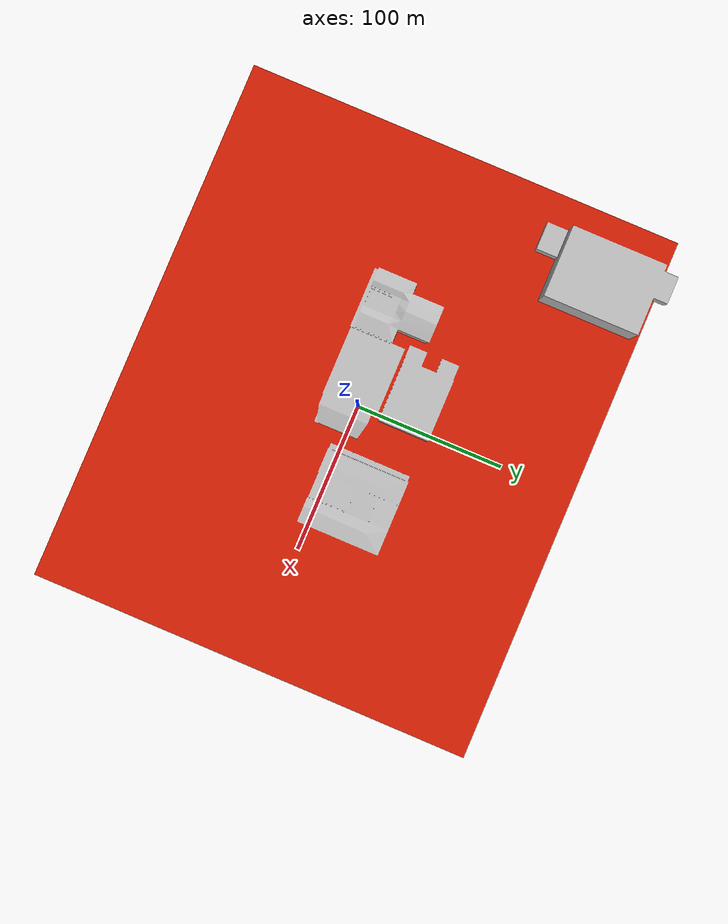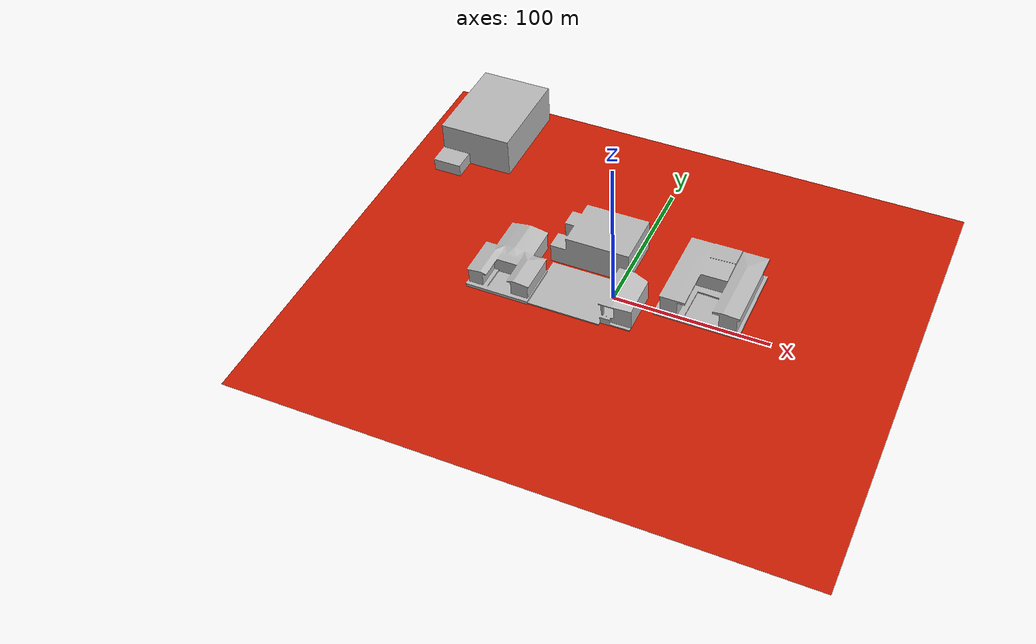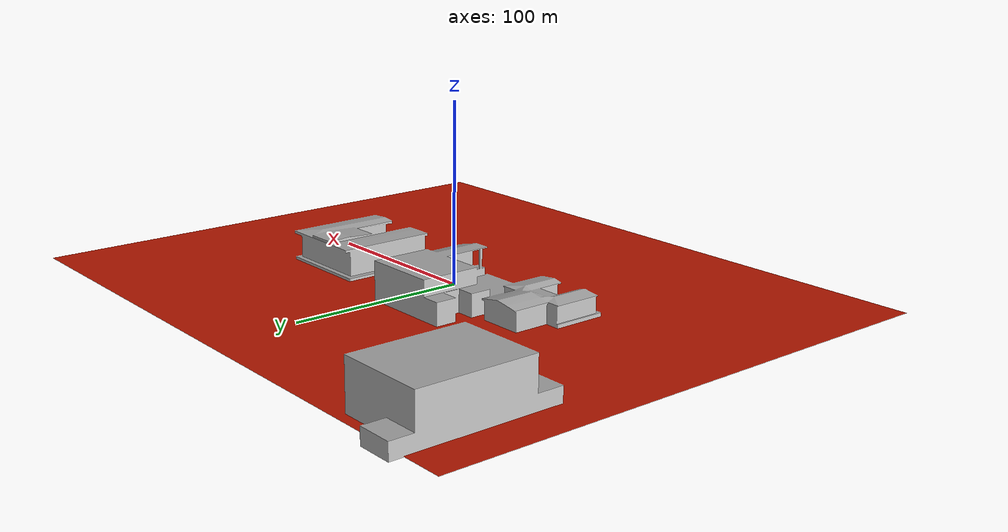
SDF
<?xml version="1.0" ?>
<sdf version="1.6">
  <model name="emi">
    <static>true</static>
    <link name="emi_link">
      <visual name="visual">
        <geometry>
          <mesh>
            <uri>model://emi/meshes/croquis.dae</uri>
          </mesh>
        </geometry>
      </visual>
      <collision name="collision">
        <geometry>
          <mesh>
            <uri>model://emi/meshes/croquis.dae</uri>
          </mesh>
        </geometry>
      </collision>
    </link>
  </model>
</sdf>
